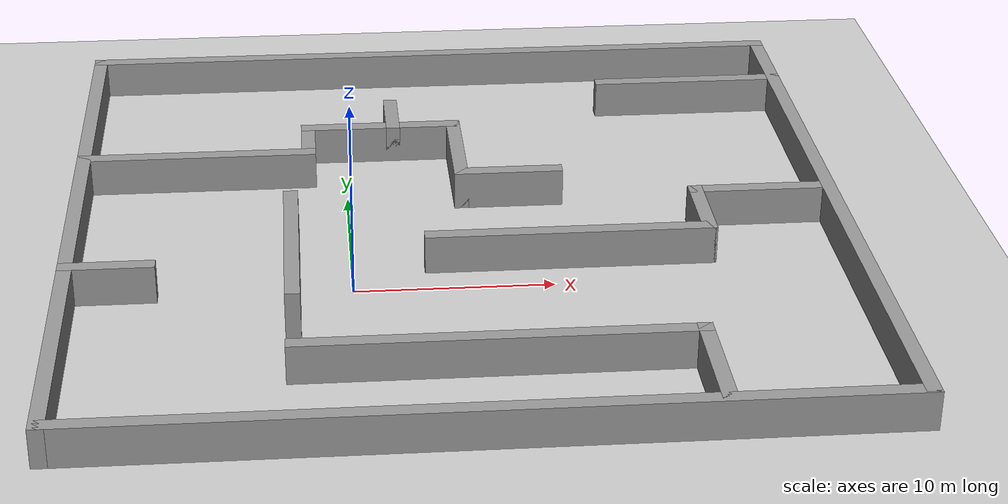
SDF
<sdf version="1.6">
 <world name="default">
  <light name="sun" type="directional">
   <pose>0 0 10 0 -0 0</pose>
   <diffuse>0.8 0.8 0.8 1</diffuse>
   <specular>0.1 0.1 0.1 1</specular>
   <attenuation>
    <range>1000</range>
    <constant>0.9</constant>
    <linear>0.01</linear>
    <quadratic>0.001</quadratic>
   </attenuation>
   <direction>-0.5 0.5 -1</direction>
  </light>
  <model name="ground_plane">
   <static>1</static>
   <link name="link">
    <collision name="collision">
     <geometry><plane><normal>0 0 1</normal><size>100 100</size></plane></geometry>
     <surface><friction><ode><mu>100</mu><mu2>50</mu2></ode></friction></surface>
    </collision>
    <visual name="visual">
     <cast_shadows>0</cast_shadows>
     <geometry><plane><normal>0 0 1</normal><size>100 100</size></plane></geometry>
     <material>
      <script><uri>file://media/materials/scripts/gazebo.material</uri><name>Gazebo/Grey</name></script>
     </material>
    </visual>
   </link>
  </model>
  <gravity>0 0 -9.8</gravity>
  <magnetic_field>6e-06 2.3e-05 -4.2e-05</magnetic_field>
  <atmosphere type="adiabatic"/>
  <physics name="default_physics" default="0" type="ode">
   <max_step_size>0.001</max_step_size>
   <real_time_factor>1</real_time_factor>
   <real_time_update_rate>1000</real_time_update_rate>
  </physics>
  <scene><ambient>0.4 0.4 0.4 1</ambient><background>0.7 0.7 0.7 1</background><shadows>1</shadows></scene>
  <spherical_coordinates>
   <surface_model>EARTH_WGS84</surface_model>
   <latitude_deg>0</latitude_deg>
   <longitude_deg>0</longitude_deg>
   <elevation>0</elevation>
   <heading_deg>0</heading_deg>
  </spherical_coordinates>
  <model name="Untitledas">
   <pose>5.5 5.5 0 0 -0 0</pose>
   <link name="Wall_0">
    <collision name="Wall_0_Collision">
     <geometry><box><size>14.75 0.75 2</size></box></geometry>
     <pose>0 0 1 0 -0 0</pose>
    </collision>
    <visual name="Wall_0_Visual">
     <pose>0 0 1 0 -0 0</pose>
     <geometry><box><size>14.75 0.75 2</size></box></geometry>
     <material>
      <script><uri>file://media/materials/scripts/gazebo.material</uri><name>Gazebo/Grey</name></script>
      <ambient>1 1 1 1</ambient>
     </material>
    </visual>
    <pose>5.5 -3.5 0 0 -0 0</pose>
   </link>
   <link name="Wall_10">
    <collision name="Wall_10_Collision">
     <geometry><box><size>3.75 0.75 2</size></box></geometry>
     <pose>0 0 1 0 -0 0</pose>
    </collision>
    <visual name="Wall_10_Visual">
     <pose>0 0 1 0 -0 0</pose>
     <geometry><box><size>3.75 0.75 2</size></box></geometry>
     <material>
      <script><uri>file://media/materials/scripts/gazebo.material</uri><name>Gazebo/Grey</name></script>
      <ambient>1 1 1 1</ambient>
     </material>
    </visual>
    <pose>-7.5 8 0 0 -0 1.5708</pose>
   </link>
   <link name="Wall_11">
    <collision name="Wall_11_Collision">
     <geometry><box><size>8.75 0.75 2</size></box></geometry>
     <pose>0 0 1 0 -0 0</pose>
    </collision>
    <visual name="Wall_11_Visual">
     <pose>0 0 1 0 -0 0</pose>
     <geometry><box><size>8.75 0.75 2</size></box></geometry>
     <material>
      <script><uri>file://media/materials/scripts/gazebo.material</uri><name>Gazebo/Grey</name></script>
      <ambient>1 1 1 1</ambient>
     </material>
    </visual>
    <pose>-3.5 9.5 0 0 -0 0</pose>
   </link>
   <link name="Wall_12">
    <collision name="Wall_12_Collision">
     <geometry><box><size>6.75 0.75 2</size></box></geometry>
     <pose>0 0 1 0 -0 0</pose>
    </collision>
    <visual name="Wall_12_Visual">
     <pose>0 0 1 0 -0 0</pose>
     <geometry><box><size>6.75 0.75 2</size></box></geometry>
     <material>
      <script><uri>file://media/materials/scripts/gazebo.material</uri><name>Gazebo/Grey</name></script>
      <ambient>1 1 1 1</ambient>
     </material>
    </visual>
    <pose>0.5 6.5 0 0 0 -1.5708</pose>
   </link>
   <link name="Wall_13">
    <collision name="Wall_13_Collision">
     <geometry><box><size>5.75 0.75 2</size></box></geometry>
     <pose>0 0 1 0 -0 0</pose>
    </collision>
    <visual name="Wall_13_Visual">
     <pose>0 0 1 0 -0 0</pose>
     <geometry><box><size>5.75 0.75 2</size></box></geometry>
     <material>
      <script><uri>file://media/materials/scripts/gazebo.material</uri><name>Gazebo/Grey</name></script>
      <ambient>1 1 1 1</ambient>
     </material>
    </visual>
    <pose>3 3.5 0 0 -0 0</pose>
   </link>
   <link name="Wall_15">
    <collision name="Wall_15_Collision">
     <geometry><box><size>7.75 0.75 2</size></box></geometry>
     <pose>0 0 1 0 -0 0</pose>
    </collision>
    <visual name="Wall_15_Visual">
     <pose>0 0 1 0 -0 0</pose>
     <geometry><box><size>7.75 0.75 2</size></box></geometry>
     <material>
      <script><uri>file://media/materials/scripts/gazebo.material</uri><name>Gazebo/Grey</name></script>
      <ambient>1 1 1 1</ambient>
     </material>
    </visual>
    <pose>16 0.5 0 0 -0 0</pose>
   </link>
   <link name="Wall_17">
    <collision name="Wall_17_Collision">
     <geometry><box><size>4.75 0.75 2</size></box></geometry>
     <pose>0 0 1 0 -0 0</pose>
    </collision>
    <visual name="Wall_17_Visual">
     <pose>0 0 1 0 -0 0</pose>
     <geometry><box><size>4.75 0.75 2</size></box></geometry>
     <material>
      <script><uri>file://media/materials/scripts/gazebo.material</uri><name>Gazebo/Grey</name></script>
      <ambient>1 1 1 1</ambient>
     </material>
    </visual>
    <pose>12.5 -1.5 0 0 -0 1.5708</pose>
   </link>
   <link name="Wall_19">
    <collision name="Wall_19_Collision">
     <geometry><box><size>4.75 0.75 2</size></box></geometry>
     <pose>0 0 1 0 -0 0</pose>
    </collision>
    <visual name="Wall_19_Visual">
     <pose>0 0 1 0 -0 0</pose>
     <geometry><box><size>4.75 0.75 2</size></box></geometry>
     <material>
      <script><uri>file://media/materials/scripts/gazebo.material</uri><name>Gazebo/Grey</name></script>
      <ambient>1 1 1 1</ambient>
     </material>
    </visual>
    <pose>-17.5 -5.5 0 0 -0 0</pose>
   </link>
   <link name="Wall_2">
    <collision name="Wall_2_Collision">
     <geometry><box><size>10.75 0.75 2.5</size></box></geometry>
     <pose>0 0 1.25 0 -0 0</pose>
    </collision>
    <visual name="Wall_2_Visual">
     <pose>0 0 1.25 0 -0 0</pose>
     <geometry><box><size>10.75 0.75 2.5</size></box></geometry>
     <material>
      <script><uri>file://media/materials/scripts/gazebo.material</uri><name>Gazebo/Grey</name></script>
      <ambient>1 1 1 1</ambient>
     </material>
    </visual>
    <pose>-8.5 -4.5 0 0 0 -1.5708</pose>
   </link>
   <link name="Wall_21">
    <collision name="Wall_21_Collision">
     <geometry><box><size>3.75 0.75 2</size></box></geometry>
     <pose>0 0 1 0 -0 0</pose>
    </collision>
    <visual name="Wall_21_Visual">
     <pose>0 0 1 0 -0 0</pose>
     <geometry><box><size>3.75 0.75 2</size></box></geometry>
     <material>
      <script><uri>file://media/materials/scripts/gazebo.material</uri><name>Gazebo/Grey</name></script>
      <ambient>1 1 1 1</ambient>
     </material>
    </visual>
    <pose>-2.827 11 0 0 -0 1.5708</pose>
   </link>
   <link name="Wall_24">
    <collision name="Wall_24_Collision">
     <geometry><box><size>10.75 0.75 2</size></box></geometry>
     <pose>0 0 1 0 -0 0</pose>
    </collision>
    <visual name="Wall_24_Visual">
     <pose>0 0 1 0 -0 0</pose>
     <geometry><box><size>10.75 0.75 2</size></box></geometry>
     <material>
      <script><uri>file://media/materials/scripts/gazebo.material</uri><name>Gazebo/Grey</name></script>
      <ambient>1 1 1 1</ambient>
     </material>
    </visual>
    <pose>14.5 14.5 0 0 -0 0</pose>
   </link>
   <link name="Wall_26">
    <collision name="Wall_26_Collision">
     <geometry><box><size>39.75 0.75 2</size></box></geometry>
     <pose>0 0 1 0 -0 0</pose>
    </collision>
    <visual name="Wall_26_Visual">
     <pose>0 0 1 0 -0 0</pose>
     <geometry><box><size>39.75 0.75 2</size></box></geometry>
     <material>
      <script><uri>file://media/materials/scripts/gazebo.material</uri><name>Gazebo/Grey</name></script>
      <ambient>1 1 1 1</ambient>
     </material>
    </visual>
    <pose>0 -19.5 0 0 -0 3.14159</pose>
   </link>
   <link name="Wall_27">
    <collision name="Wall_27_Collision">
     <geometry><box><size>39.75 0.75 2</size></box></geometry>
     <pose>0 0 1 0 -0 0</pose>
    </collision>
    <visual name="Wall_27_Visual">
     <pose>0 0 1 0 -0 0</pose>
     <geometry><box><size>39.75 0.75 2</size></box></geometry>
     <material>
      <script><uri>file://media/materials/scripts/gazebo.material</uri><name>Gazebo/Grey</name></script>
      <ambient>1 1 1 1</ambient>
     </material>
    </visual>
    <pose>-19.5 0 0 0 -0 1.5708</pose>
   </link>
   <link name="Wall_28">
    <collision name="Wall_28_Collision">
     <geometry><box><size>39.75 0.75 2</size></box></geometry>
     <pose>0 0 1 0 -0 0</pose>
    </collision>
    <visual name="Wall_28_Visual">
     <pose>0 0 1 0 -0 0</pose>
     <geometry><box><size>39.75 0.75 2</size></box></geometry>
     <material>
      <script><uri>file://media/materials/scripts/gazebo.material</uri><name>Gazebo/Grey</name></script>
      <ambient>1 1 1 1</ambient>
     </material>
    </visual>
    <pose>0 19.5 0 0 -0 0</pose>
   </link>
   <link name="Wall_29">
    <collision name="Wall_29_Collision">
     <geometry><box><size>39.75 0.75 2</size></box></geometry>
     <pose>0 0 1 0 -0 0</pose>
    </collision>
    <visual name="Wall_29_Visual">
     <pose>0 0 1 0 -0 0</pose>
     <geometry><box><size>39.75 0.75 2</size></box></geometry>
     <material>
      <script><uri>file://media/materials/scripts/gazebo.material</uri><name>Gazebo/Grey</name></script>
      <ambient>1 1 1 1</ambient>
     </material>
    </visual>
    <pose>19.5 0 0 0 0 -1.5708</pose>
   </link>
   <link name="Wall_4">
    <collision name="Wall_4_Collision">
     <geometry><box><size>19.75 0.75 2</size></box></geometry>
     <pose>0 0 1 0 -0 0</pose>
    </collision>
    <visual name="Wall_4_Visual">
     <pose>0 0 1 0 -0 0</pose>
     <geometry><box><size>19.75 0.75 2</size></box></geometry>
     <material>
      <script><uri>file://media/materials/scripts/gazebo.material</uri><name>Gazebo/Grey</name></script>
      <ambient>1 1 1 1</ambient>
     </material>
    </visual>
    <pose>1 -13.5 0 0 -0 0</pose>
   </link>
   <link name="Wall_6">
    <collision name="Wall_6_Collision">
     <geometry><box><size>6.75 0.75 2</size></box></geometry>
     <pose>0 0 1 0 -0 0</pose>
    </collision>
    <visual name="Wall_6_Visual">
     <pose>0 0 1 0 -0 0</pose>
     <geometry><box><size>6.75 0.75 2</size></box></geometry>
     <material>
      <script><uri>file://media/materials/scripts/gazebo.material</uri><name>Gazebo/Grey</name></script>
      <ambient>1 1 1 1</ambient>
     </material>
    </visual>
    <pose>10.5 -16.5 0 0 0 -1.5708</pose>
   </link>
   <link name="Wall_8">
    <collision name="Wall_8_Collision">
     <geometry><box><size>12.75 0.75 2</size></box></geometry>
     <pose>0 0 1 0 -0 0</pose>
    </collision>
    <visual name="Wall_8_Visual">
     <pose>0 0 1 0 -0 0</pose>
     <geometry><box><size>12.75 0.75 2</size></box></geometry>
     <material>
      <script><uri>file://media/materials/scripts/gazebo.material</uri><name>Gazebo/Grey</name></script>
      <ambient>1 1 1 1</ambient>
     </material>
    </visual>
    <pose>-13.5 6.5 0 0 -0 3.14159</pose>
   </link>
   <static>1</static>
  </model>
 </world>
</sdf>
